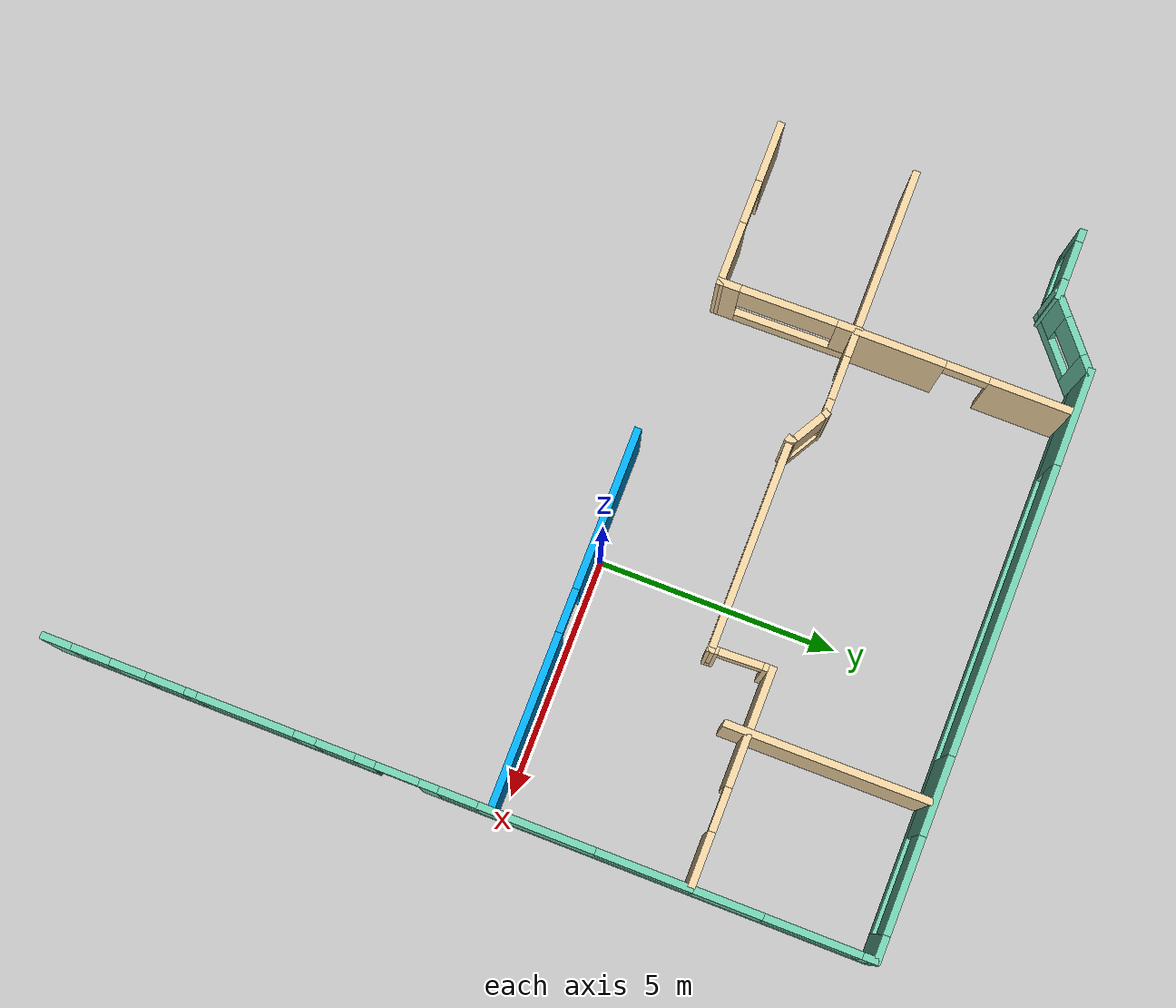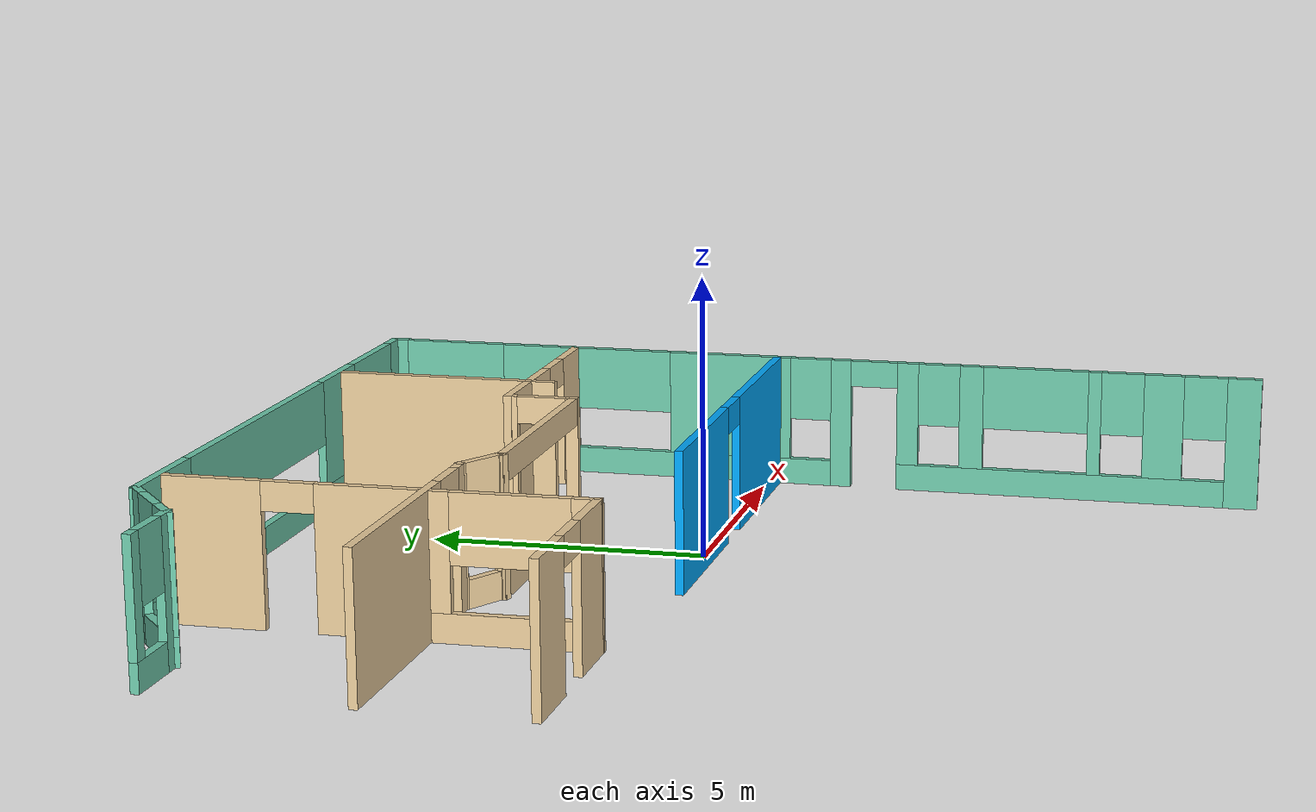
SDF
<sdf version="1.6">
 <model name="Building-1">
  <pose>-1.79482 -0.843369 0 0 -0 0</pose>
  <link name="Wall_58">
   <pose>7.27698 -0.015167 0 0 -0 1.5652</pose>
   <visual name="Wall_58_Visual_0">
    <pose>-8.25726 0 1.25 0 -0 0</pose>
    <geometry><box><size>0.633232 0.15 2.5</size></box></geometry>
    <material>
     <script><uri>file://media/materials/scripts/gazebo.material</uri><name>Gazebo/Grey</name></script>
     <ambient>0.435294 0.796078 0.67451 1</ambient>
    </material>
    <meta><layer>0</layer></meta>
   </visual>
   <collision name="Wall_58_Collision_0">
    <geometry><box><size>0.633232 0.15 2.5</size></box></geometry>
    <pose>-8.25726 0 1.25 0 -0 0</pose>
   </collision>
   <visual name="Wall_58_Visual_1">
    <pose>-0.583033 0 1.25 0 -0 0</pose>
    <geometry><box><size>0.396965 0.15 2.5</size></box></geometry>
    <material>
     <script><uri>file://media/materials/scripts/gazebo.material</uri><name>Gazebo/Grey</name></script>
     <ambient>0.435294 0.796078 0.67451 1</ambient>
    </material>
    <meta><layer>0</layer></meta>
   </visual>
   <collision name="Wall_58_Collision_1">
    <geometry><box><size>0.396965 0.15 2.5</size></box></geometry>
    <pose>-0.583033 0 1.25 0 -0 0</pose>
   </collision>
   <visual name="Wall_58_Visual_2">
    <pose>-4.81108 0 0.25 0 -0 0</pose>
    <geometry><box><size>6.25913 0.15 0.5</size></box></geometry>
    <material>
     <script><uri>file://media/materials/scripts/gazebo.material</uri><name>Gazebo/Grey</name></script>
     <ambient>0.435294 0.796078 0.67451 1</ambient>
    </material>
    <meta><layer>0</layer></meta>
   </visual>
   <collision name="Wall_58_Collision_2">
    <geometry><box><size>6.25913 0.15 0.5</size></box></geometry>
    <pose>-4.81108 0 0.25 0 -0 0</pose>
   </collision>
   <visual name="Wall_58_Visual_3">
    <pose>4.09466 0 0.25 0 -0 0</pose>
    <geometry><box><size>8.95843 0.15 0.5</size></box></geometry>
    <material>
     <script><uri>file://media/materials/scripts/gazebo.material</uri><name>Gazebo/Grey</name></script>
     <ambient>0.435294 0.796078 0.67451 1</ambient>
    </material>
    <meta><layer>0</layer></meta>
   </visual>
   <collision name="Wall_58_Collision_3">
    <geometry><box><size>8.95843 0.15 0.5</size></box></geometry>
    <pose>4.09466 0 0.25 0 -0 0</pose>
   </collision>
   <visual name="Wall_58_Visual_4">
    <pose>-6.76763 0 1.5 0 -0 0</pose>
    <geometry><box><size>0.746033 0.15 2</size></box></geometry>
    <material>
     <script><uri>file://media/materials/scripts/gazebo.material</uri><name>Gazebo/Grey</name></script>
     <ambient>0.435294 0.796078 0.67451 1</ambient>
    </material>
    <meta><layer>0</layer></meta>
   </visual>
   <collision name="Wall_58_Collision_4">
    <geometry><box><size>0.746033 0.15 2</size></box></geometry>
    <pose>-6.76763 0 1.5 0 -0 0</pose>
   </collision>
   <visual name="Wall_58_Visual_5">
    <pose>-5.47131 0 1.5 0 -0 0</pose>
    <geometry><box><size>0.246602 0.15 2</size></box></geometry>
    <material>
     <script><uri>file://media/materials/scripts/gazebo.material</uri><name>Gazebo/Grey</name></script>
     <ambient>0.435294 0.796078 0.67451 1</ambient>
    </material>
    <meta><layer>0</layer></meta>
   </visual>
   <collision name="Wall_58_Collision_5">
    <geometry><box><size>0.246602 0.15 2</size></box></geometry>
    <pose>-5.47131 0 1.5 0 -0 0</pose>
   </collision>
   <visual name="Wall_58_Visual_6">
    <pose>-3.12103 0 1.5 0 -0 0</pose>
    <geometry><box><size>0.453955 0.15 2</size></box></geometry>
    <material>
     <script><uri>file://media/materials/scripts/gazebo.material</uri><name>Gazebo/Grey</name></script>
     <ambient>0.435294 0.796078 0.67451 1</ambient>
    </material>
    <meta><layer>0</layer></meta>
   </visual>
   <collision name="Wall_58_Collision_6">
    <geometry><box><size>0.453955 0.15 2</size></box></geometry>
    <pose>-3.12103 0 1.5 0 -0 0</pose>
   </collision>
   <visual name="Wall_58_Visual_7">
    <pose>-1.88778 0 1.5 0 -0 0</pose>
    <geometry><box><size>0.412539 0.15 2</size></box></geometry>
    <material>
     <script><uri>file://media/materials/scripts/gazebo.material</uri><name>Gazebo/Grey</name></script>
     <ambient>0.435294 0.796078 0.67451 1</ambient>
    </material>
    <meta><layer>0</layer></meta>
   </visual>
   <collision name="Wall_58_Collision_7">
    <geometry><box><size>0.412539 0.15 2</size></box></geometry>
    <pose>-1.88778 0 1.5 0 -0 0</pose>
   </collision>
   <visual name="Wall_58_Visual_8">
    <pose>-1.88778 0 1.5 0 -0 0</pose>
    <geometry><box><size>0.412539 0.15 2</size></box></geometry>
    <material>
     <script><uri>file://media/materials/scripts/gazebo.material</uri><name>Gazebo/Grey</name></script>
     <ambient>0.435294 0.796078 0.67451 1</ambient>
    </material>
    <meta><layer>0</layer></meta>
   </visual>
   <collision name="Wall_58_Collision_8">
    <geometry><box><size>0.412539 0.15 2</size></box></geometry>
    <pose>-1.88778 0 1.5 0 -0 0</pose>
   </collision>
   <visual name="Wall_58_Visual_9">
    <pose>1.61766 0 1.5 0 -0 0</pose>
    <geometry><box><size>2.40442 0.15 2</size></box></geometry>
    <material>
     <script><uri>file://media/materials/scripts/gazebo.material</uri><name>Gazebo/Grey</name></script>
     <ambient>0.435294 0.796078 0.67451 1</ambient>
    </material>
    <meta><layer>0</layer></meta>
   </visual>
   <collision name="Wall_58_Collision_9">
    <geometry><box><size>2.40442 0.15 2</size></box></geometry>
    <pose>1.61766 0 1.5 0 -0 0</pose>
   </collision>
   <visual name="Wall_58_Visual_10">
    <pose>5.52613 0 1.5 0 -0 0</pose>
    <geometry><box><size>1.41252 0.15 2</size></box></geometry>
    <material>
     <script><uri>file://media/materials/scripts/gazebo.material</uri><name>Gazebo/Grey</name></script>
     <ambient>0.435294 0.796078 0.67451 1</ambient>
    </material>
    <meta><layer>0</layer></meta>
   </visual>
   <collision name="Wall_58_Collision_10">
    <geometry><box><size>1.41252 0.15 2</size></box></geometry>
    <pose>5.52613 0 1.5 0 -0 0</pose>
   </collision>
   <visual name="Wall_58_Visual_11">
    <pose>8.40314 0 1.5 0 -0 0</pose>
    <geometry><box><size>0.341482 0.15 2</size></box></geometry>
    <material>
     <script><uri>file://media/materials/scripts/gazebo.material</uri><name>Gazebo/Grey</name></script>
     <ambient>0.435294 0.796078 0.67451 1</ambient>
    </material>
    <meta><layer>0</layer></meta>
   </visual>
   <collision name="Wall_58_Collision_11">
    <geometry><box><size>0.341482 0.15 2</size></box></geometry>
    <pose>8.40314 0 1.5 0 -0 0</pose>
   </collision>
   <visual name="Wall_58_Visual_12">
    <pose>-7.54064 0 1.9 0 -0 0</pose>
    <geometry><box><size>0.8 0.15 1.2</size></box></geometry>
    <material>
     <script><uri>file://media/materials/scripts/gazebo.material</uri><name>Gazebo/Grey</name></script>
     <ambient>0.435294 0.796078 0.67451 1</ambient>
    </material>
    <meta><layer>0</layer></meta>
   </visual>
   <collision name="Wall_58_Collision_12">
    <geometry><box><size>0.8 0.15 1.2</size></box></geometry>
    <pose>-7.54064 0 1.9 0 -0 0</pose>
   </collision>
   <visual name="Wall_58_Visual_13">
    <pose>0.01545 0 1.9 0 -0 0</pose>
    <geometry><box><size>0.8 0.15 1.2</size></box></geometry>
    <material>
     <script><uri>file://media/materials/scripts/gazebo.material</uri><name>Gazebo/Grey</name></script>
     <ambient>0.435294 0.796078 0.67451 1</ambient>
    </material>
    <meta><layer>0</layer></meta>
   </visual>
   <collision name="Wall_58_Collision_13">
    <geometry><box><size>0.8 0.15 1.2</size></box></geometry>
    <pose>0.01545 0 1.9 0 -0 0</pose>
   </collision>
   <visual name="Wall_58_Visual_14">
    <pose>-5.99461 0 1.9 0 -0 0</pose>
    <geometry><box><size>0.8 0.15 1.2</size></box></geometry>
    <material>
     <script><uri>file://media/materials/scripts/gazebo.material</uri><name>Gazebo/Grey</name></script>
     <ambient>0.435294 0.796078 0.67451 1</ambient>
    </material>
    <meta><layer>0</layer></meta>
   </visual>
   <collision name="Wall_58_Collision_14">
    <geometry><box><size>0.8 0.15 1.2</size></box></geometry>
    <pose>-5.99461 0 1.9 0 -0 0</pose>
   </collision>
   <visual name="Wall_58_Visual_15">
    <pose>-4.34801 0 1.9 0 -0 0</pose>
    <geometry><box><size>2 0.15 1.2</size></box></geometry>
    <material>
     <script><uri>file://media/materials/scripts/gazebo.material</uri><name>Gazebo/Grey</name></script>
     <ambient>0.435294 0.796078 0.67451 1</ambient>
    </material>
    <meta><layer>0</layer></meta>
   </visual>
   <collision name="Wall_58_Collision_15">
    <geometry><box><size>2 0.15 1.2</size></box></geometry>
    <pose>-4.34801 0 1.9 0 -0 0</pose>
   </collision>
   <visual name="Wall_58_Visual_16">
    <pose>-2.49405 0 1.9 0 -0 0</pose>
    <geometry><box><size>0.8 0.15 1.2</size></box></geometry>
    <material>
     <script><uri>file://media/materials/scripts/gazebo.material</uri><name>Gazebo/Grey</name></script>
     <ambient>0.435294 0.796078 0.67451 1</ambient>
    </material>
    <meta><layer>0</layer></meta>
   </visual>
   <collision name="Wall_58_Collision_16">
    <geometry><box><size>0.8 0.15 1.2</size></box></geometry>
    <pose>-2.49405 0 1.9 0 -0 0</pose>
   </collision>
   <visual name="Wall_58_Visual_17">
    <pose>3.81987 0 1.9 0 -0 0</pose>
    <geometry><box><size>2 0.15 1.2</size></box></geometry>
    <material>
     <script><uri>file://media/materials/scripts/gazebo.material</uri><name>Gazebo/Grey</name></script>
     <ambient>0.435294 0.796078 0.67451 1</ambient>
    </material>
    <meta><layer>0</layer></meta>
   </visual>
   <collision name="Wall_58_Collision_17">
    <geometry><box><size>2 0.15 1.2</size></box></geometry>
    <pose>3.81987 0 1.9 0 -0 0</pose>
   </collision>
   <visual name="Wall_58_Visual_18">
    <pose>7.23239 0 1.9 0 -0 0</pose>
    <geometry><box><size>2 0.15 1.2</size></box></geometry>
    <material>
     <script><uri>file://media/materials/scripts/gazebo.material</uri><name>Gazebo/Grey</name></script>
     <ambient>0.435294 0.796078 0.67451 1</ambient>
    </material>
    <meta><layer>0</layer></meta>
   </visual>
   <collision name="Wall_58_Collision_18">
    <geometry><box><size>2 0.15 1.2</size></box></geometry>
    <pose>7.23239 0 1.9 0 -0 0</pose>
   </collision>
   <visual name="Wall_58_Visual_19">
    <pose>-1.23151 0 2.25 0 -0 0</pose>
    <geometry><box><size>0.9 0.15 0.5</size></box></geometry>
    <material>
     <script><uri>file://media/materials/scripts/gazebo.material</uri><name>Gazebo/Grey</name></script>
     <ambient>0.435294 0.796078 0.67451 1</ambient>
    </material>
    <meta><layer>0</layer></meta>
   </visual>
   <collision name="Wall_58_Collision_19">
    <geometry><box><size>0.9 0.15 0.5</size></box></geometry>
    <pose>-1.23151 0 2.25 0 -0 0</pose>
   </collision>
   <visual name="Wall_58_Visual_20">
    <pose>-1.23151 0 2.25 0 -0 0</pose>
    <geometry><box><size>0.9 0.15 0.5</size></box></geometry>
    <material>
     <script><uri>file://media/materials/scripts/gazebo.material</uri><name>Gazebo/Grey</name></script>
     <ambient>0.435294 0.796078 0.67451 1</ambient>
    </material>
    <meta><layer>0</layer></meta>
   </visual>
   <collision name="Wall_58_Collision_20">
    <geometry><box><size>0.9 0.15 0.5</size></box></geometry>
    <pose>-1.23151 0 2.25 0 -0 0</pose>
   </collision>
  </link>
  <link name="Wall_59">
   <pose>1.27452 8.50244 0 0 -0 3.14159</pose>
   <visual name="Wall_59_Visual_0">
    <pose>-5.83178 0 1.25 0 -0 0</pose>
    <geometry><box><size>0.586429 0.15 2.5</size></box></geometry>
    <material>
     <script><uri>file://media/materials/scripts/gazebo.material</uri><name>Gazebo/Grey</name></script>
     <ambient>0.435294 0.796078 0.67451 1</ambient>
    </material>
    <meta><layer>0</layer></meta>
   </visual>
   <collision name="Wall_59_Collision_0">
    <geometry><box><size>0.586429 0.15 2.5</size></box></geometry>
    <pose>-5.83178 0 1.25 0 -0 0</pose>
   </collision>
   <visual name="Wall_59_Visual_1">
    <pose>0.293215 0 0.25 0 -0 0</pose>
    <geometry><box><size>11.6636 0.15 0.5</size></box></geometry>
    <material>
     <script><uri>file://media/materials/scripts/gazebo.material</uri><name>Gazebo/Grey</name></script>
     <ambient>0.435294 0.796078 0.67451 1</ambient>
    </material>
    <meta><layer>0</layer></meta>
   </visual>
   <collision name="Wall_59_Collision_1">
    <geometry><box><size>11.6636 0.15 0.5</size></box></geometry>
    <pose>0.293215 0 0.25 0 -0 0</pose>
   </collision>
   <visual name="Wall_59_Visual_2">
    <pose>-2.72513 0 1.5 0 -0 0</pose>
    <geometry><box><size>1.62688 0.15 2</size></box></geometry>
    <material>
     <script><uri>file://media/materials/scripts/gazebo.material</uri><name>Gazebo/Grey</name></script>
     <ambient>0.435294 0.796078 0.67451 1</ambient>
    </material>
    <meta><layer>0</layer></meta>
   </visual>
   <collision name="Wall_59_Collision_2">
    <geometry><box><size>1.62688 0.15 2</size></box></geometry>
    <pose>-2.72513 0 1.5 0 -0 0</pose>
   </collision>
   <visual name="Wall_59_Visual_3">
    <pose>5.10665 0 1.5 0 -0 0</pose>
    <geometry><box><size>2.03669 0.15 2</size></box></geometry>
    <material>
     <script><uri>file://media/materials/scripts/gazebo.material</uri><name>Gazebo/Grey</name></script>
     <ambient>0.435294 0.796078 0.67451 1</ambient>
    </material>
    <meta><layer>0</layer></meta>
   </visual>
   <collision name="Wall_59_Collision_3">
    <geometry><box><size>2.03669 0.15 2</size></box></geometry>
    <pose>5.10665 0 1.5 0 -0 0</pose>
   </collision>
   <visual name="Wall_59_Visual_4">
    <pose>-4.53857 0 1.9 0 -0 0</pose>
    <geometry><box><size>2 0.15 1.2</size></box></geometry>
    <material>
     <script><uri>file://media/materials/scripts/gazebo.material</uri><name>Gazebo/Grey</name></script>
     <ambient>0.435294 0.796078 0.67451 1</ambient>
    </material>
    <meta><layer>0</layer></meta>
   </visual>
   <collision name="Wall_59_Collision_4">
    <geometry><box><size>2 0.15 1.2</size></box></geometry>
    <pose>-4.53857 0 1.9 0 -0 0</pose>
   </collision>
   <visual name="Wall_59_Visual_5">
    <pose>1.08831 0 1.9 0 -0 0</pose>
    <geometry><box><size>6 0.15 1.2</size></box></geometry>
    <material>
     <script><uri>file://media/materials/scripts/gazebo.material</uri><name>Gazebo/Grey</name></script>
     <ambient>0.435294 0.796078 0.67451 1</ambient>
    </material>
    <meta><layer>0</layer></meta>
   </visual>
   <collision name="Wall_59_Collision_5">
    <geometry><box><size>6 0.15 1.2</size></box></geometry>
    <pose>1.08831 0 1.9 0 -0 0</pose>
   </collision>
  </link>
  <link name="Wall_60">
   <pose>-5.41275 7.93742 0 0 0 -2.43304</pose>
   <visual name="Wall_60_Visual_0">
    <pose>-0.703208 0 1.25 0 -0 0</pose>
    <geometry><box><size>0.422171 0.15 2.5</size></box></geometry>
    <material>
     <script><uri>file://media/materials/scripts/gazebo.material</uri><name>Gazebo/Grey</name></script>
     <ambient>0.435294 0.796078 0.67451 1</ambient>
    </material>
    <meta><layer>0</layer></meta>
   </visual>
   <collision name="Wall_60_Collision_0">
    <geometry><box><size>0.422171 0.15 2.5</size></box></geometry>
    <pose>-0.703208 0 1.25 0 -0 0</pose>
   </collision>
   <visual name="Wall_60_Visual_1">
    <pose>0.211086 0 0.25 0 -0 0</pose>
    <geometry><box><size>1.40642 0.15 0.5</size></box></geometry>
    <material>
     <script><uri>file://media/materials/scripts/gazebo.material</uri><name>Gazebo/Grey</name></script>
     <ambient>0.435294 0.796078 0.67451 1</ambient>
    </material>
    <meta><layer>0</layer></meta>
   </visual>
   <collision name="Wall_60_Collision_1">
    <geometry><box><size>1.40642 0.15 0.5</size></box></geometry>
    <pose>0.211086 0 0.25 0 -0 0</pose>
   </collision>
   <visual name="Wall_60_Visual_2">
    <pose>0.611086 0 1.5 0 -0 0</pose>
    <geometry><box><size>0.606416 0.15 2</size></box></geometry>
    <material>
     <script><uri>file://media/materials/scripts/gazebo.material</uri><name>Gazebo/Grey</name></script>
     <ambient>0.435294 0.796078 0.67451 1</ambient>
    </material>
    <meta><layer>0</layer></meta>
   </visual>
   <collision name="Wall_60_Collision_2">
    <geometry><box><size>0.606416 0.15 2</size></box></geometry>
    <pose>0.611086 0 1.5 0 -0 0</pose>
   </collision>
   <visual name="Wall_60_Visual_3">
    <pose>-0.092122 0 1.9 0 -0 0</pose>
    <geometry><box><size>0.8 0.15 1.2</size></box></geometry>
    <material>
     <script><uri>file://media/materials/scripts/gazebo.material</uri><name>Gazebo/Grey</name></script>
     <ambient>0.435294 0.796078 0.67451 1</ambient>
    </material>
    <meta><layer>0</layer></meta>
   </visual>
   <collision name="Wall_60_Collision_3">
    <geometry><box><size>0.8 0.15 1.2</size></box></geometry>
    <pose>-0.092122 0 1.9 0 -0 0</pose>
   </collision>
  </link>
  <link name="Wall_65">
   <pose>-6.64959 7.42898 0 0 -0 3.14159</pose>
   <visual name="Wall_65_Visual_0">
    <pose>-0.53233 0 1.25 0 -0 0</pose>
    <geometry><box><size>0.43534 0.15 2.5</size></box></geometry>
    <material>
     <script><uri>file://media/materials/scripts/gazebo.material</uri><name>Gazebo/Grey</name></script>
     <ambient>0.435294 0.796078 0.67451 1</ambient>
    </material>
    <meta><layer>0</layer></meta>
   </visual>
   <collision name="Wall_65_Collision_0">
    <geometry><box><size>0.43534 0.15 2.5</size></box></geometry>
    <pose>-0.53233 0 1.25 0 -0 0</pose>
   </collision>
   <visual name="Wall_65_Visual_1">
    <pose>0.21767 0 0.25 0 -0 0</pose>
    <geometry><box><size>1.06466 0.15 0.5</size></box></geometry>
    <material>
     <script><uri>file://media/materials/scripts/gazebo.material</uri><name>Gazebo/Grey</name></script>
     <ambient>0.435294 0.796078 0.67451 1</ambient>
    </material>
    <meta><layer>0</layer></meta>
   </visual>
   <collision name="Wall_65_Collision_1">
    <geometry><box><size>1.06466 0.15 0.5</size></box></geometry>
    <pose>0.21767 0 0.25 0 -0 0</pose>
   </collision>
   <visual name="Wall_65_Visual_2">
    <pose>0.61767 0 1.5 0 -0 0</pose>
    <geometry><box><size>0.26466 0.15 2</size></box></geometry>
    <material>
     <script><uri>file://media/materials/scripts/gazebo.material</uri><name>Gazebo/Grey</name></script>
     <ambient>0.435294 0.796078 0.67451 1</ambient>
    </material>
    <meta><layer>0</layer></meta>
   </visual>
   <collision name="Wall_65_Collision_2">
    <geometry><box><size>0.26466 0.15 2</size></box></geometry>
    <pose>0.61767 0 1.5 0 -0 0</pose>
   </collision>
   <visual name="Wall_65_Visual_3">
    <pose>0.08534 0 1.9 0 -0 0</pose>
    <geometry><box><size>0.8 0.15 1.2</size></box></geometry>
    <material>
     <script><uri>file://media/materials/scripts/gazebo.material</uri><name>Gazebo/Grey</name></script>
     <ambient>0.435294 0.796078 0.67451 1</ambient>
    </material>
    <meta><layer>0</layer></meta>
   </visual>
   <collision name="Wall_65_Collision_3">
    <geometry><box><size>0.8 0.15 1.2</size></box></geometry>
    <pose>0.08534 0 1.9 0 -0 0</pose>
   </collision>
  </link>
  <link name="Wall_75">
   <pose>-4.7159 3.98332 0 0 -0 0</pose>
   <visual name="Wall_75_Visual_0">
    <pose>-0.643066 0 1.25 0 -0 0</pose>
    <geometry><box><size>3.96387 0.15 2.5</size></box></geometry>
    <material>
     <script><uri>file://media/materials/scripts/gazebo.material</uri><name>Gazebo/Grey</name></script>
     <ambient>0.921569 0.807843 0.615686 1</ambient>
    </material>
    <meta><layer>0</layer></meta>
   </visual>
   <collision name="Wall_75_Collision_0">
    <geometry><box><size>3.96387 0.15 2.5</size></box></geometry>
    <pose>-0.643066 0 1.25 0 -0 0</pose>
   </collision>
   <visual name="Wall_75_Visual_1">
    <pose>2.43193 0 1.25 0 -0 0</pose>
    <geometry><box><size>0.386132 0.15 2.5</size></box></geometry>
    <material>
     <script><uri>file://media/materials/scripts/gazebo.material</uri><name>Gazebo/Grey</name></script>
     <ambient>0.921569 0.807843 0.615686 1</ambient>
    </material>
    <meta><layer>0</layer></meta>
   </visual>
   <collision name="Wall_75_Collision_1">
    <geometry><box><size>0.386132 0.15 2.5</size></box></geometry>
    <pose>2.43193 0 1.25 0 -0 0</pose>
   </collision>
   <visual name="Wall_75_Visual_2">
    <pose>1.78887 0 2.25 0 -0 0</pose>
    <geometry><box><size>0.9 0.15 0.5</size></box></geometry>
    <material>
     <script><uri>file://media/materials/scripts/gazebo.material</uri><name>Gazebo/Grey</name></script>
     <ambient>0.921569 0.807843 0.615686 1</ambient>
    </material>
    <meta><layer>0</layer></meta>
   </visual>
   <collision name="Wall_75_Collision_2">
    <geometry><box><size>0.9 0.15 0.5</size></box></geometry>
    <pose>1.78887 0 2.25 0 -0 0</pose>
   </collision>
  </link>
  <link name="Wall_76">
   <pose>-1.79784 3.77082 0 0 0 -0.523599</pose>
   <visual name="Wall_76_Visual_0">
    <pose>-0.433172 0 1.25 0 -0 0</pose>
    <geometry><box><size>0.133657 0.15 2.5</size></box></geometry>
    <material>
     <script><uri>file://media/materials/scripts/gazebo.material</uri><name>Gazebo/Grey</name></script>
     <ambient>0.921569 0.807843 0.615686 1</ambient>
    </material>
    <meta><layer>0</layer></meta>
   </visual>
   <collision name="Wall_76_Collision_0">
    <geometry><box><size>0.133657 0.15 2.5</size></box></geometry>
    <pose>-0.433172 0 1.25 0 -0 0</pose>
   </collision>
   <visual name="Wall_76_Visual_1">
    <pose>0.066828 0 0.25 0 -0 0</pose>
    <geometry><box><size>0.866343 0.15 0.5</size></box></geometry>
    <material>
     <script><uri>file://media/materials/scripts/gazebo.material</uri><name>Gazebo/Grey</name></script>
     <ambient>0.921569 0.807843 0.615686 1</ambient>
    </material>
    <meta><layer>0</layer></meta>
   </visual>
   <collision name="Wall_76_Collision_1">
    <geometry><box><size>0.866343 0.15 0.5</size></box></geometry>
    <pose>0.066828 0 0.25 0 -0 0</pose>
   </collision>
   <visual name="Wall_76_Visual_2">
    <pose>0.466828 0 1.5 0 -0 0</pose>
    <geometry><box><size>0.066343 0.15 2</size></box></geometry>
    <material>
     <script><uri>file://media/materials/scripts/gazebo.material</uri><name>Gazebo/Grey</name></script>
     <ambient>0.921569 0.807843 0.615686 1</ambient>
    </material>
    <meta><layer>0</layer></meta>
   </visual>
   <collision name="Wall_76_Collision_2">
    <geometry><box><size>0.066343 0.15 2</size></box></geometry>
    <pose>0.466828 0 1.5 0 -0 0</pose>
   </collision>
   <visual name="Wall_76_Visual_3">
    <pose>0.033657 0 1.9 0 -0 0</pose>
    <geometry><box><size>0.8 0.15 1.2</size></box></geometry>
    <material>
     <script><uri>file://media/materials/scripts/gazebo.material</uri><name>Gazebo/Grey</name></script>
     <ambient>0.921569 0.807843 0.615686 1</ambient>
    </material>
    <meta><layer>0</layer></meta>
   </visual>
   <collision name="Wall_76_Collision_3">
    <geometry><box><size>0.8 0.15 1.2</size></box></geometry>
    <pose>0.033657 0 1.9 0 -0 0</pose>
   </collision>
  </link>
  <link name="Wall_77">
   <collision name="Wall_77_Collision">
    <geometry><box><size>0.210855 0.15 2.5</size></box></geometry>
    <pose>0 0 1.25 0 -0 0</pose>
   </collision>
   <visual name="Wall_77_Visual">
    <pose>0 0 1.25 0 -0 0</pose>
    <geometry><box><size>0.210855 0.15 2.5</size></box></geometry>
    <material>
     <script><uri>file://media/materials/scripts/gazebo.material</uri><name>Gazebo/Grey</name></script>
     <ambient>0.921569 0.807843 0.615686 1</ambient>
    </material>
    <meta><layer>0</layer></meta>
   </visual>
   <pose>-1.43921 3.52939 0 0 0 -1.88591</pose>
  </link>
  <link name="Wall_78">
   <pose>0.726359 3.51932 0 0 -0 0</pose>
   <visual name="Wall_78_Visual_0">
    <pose>-2.1723 0 1.25 0 -0 0</pose>
    <geometry><box><size>0.155395 0.15 2.5</size></box></geometry>
    <material>
     <script><uri>file://media/materials/scripts/gazebo.material</uri><name>Gazebo/Grey</name></script>
     <ambient>0.921569 0.807843 0.615686 1</ambient>
    </material>
    <meta><layer>0</layer></meta>
   </visual>
   <collision name="Wall_78_Collision_0">
    <geometry><box><size>0.155395 0.15 2.5</size></box></geometry>
    <pose>-2.1723 0 1.25 0 -0 0</pose>
   </collision>
   <visual name="Wall_78_Visual_1">
    <pose>0.077698 0 0.25 0 -0 0</pose>
    <geometry><box><size>4.3446 0.15 0.5</size></box></geometry>
    <material>
     <script><uri>file://media/materials/scripts/gazebo.material</uri><name>Gazebo/Grey</name></script>
     <ambient>0.921569 0.807843 0.615686 1</ambient>
    </material>
    <meta><layer>0</layer></meta>
   </visual>
   <collision name="Wall_78_Collision_1">
    <geometry><box><size>4.3446 0.15 0.5</size></box></geometry>
    <pose>0.077698 0 0.25 0 -0 0</pose>
   </collision>
   <visual name="Wall_78_Visual_2">
    <pose>2.19798 0 1.5 0 -0 0</pose>
    <geometry><box><size>0.104045 0.15 2</size></box></geometry>
    <material>
     <script><uri>file://media/materials/scripts/gazebo.material</uri><name>Gazebo/Grey</name></script>
     <ambient>0.921569 0.807843 0.615686 1</ambient>
    </material>
    <meta><layer>0</layer></meta>
   </visual>
   <collision name="Wall_78_Collision_2">
    <geometry><box><size>0.104045 0.15 2</size></box></geometry>
    <pose>2.19798 0 1.5 0 -0 0</pose>
   </collision>
   <visual name="Wall_78_Visual_3">
    <pose>0.025675 0 2.25 0 -0 0</pose>
    <geometry><box><size>4.24056 0.15 0.5</size></box></geometry>
    <material>
     <script><uri>file://media/materials/scripts/gazebo.material</uri><name>Gazebo/Grey</name></script>
     <ambient>0.921569 0.807843 0.615686 1</ambient>
    </material>
    <meta><layer>0</layer></meta>
   </visual>
   <collision name="Wall_78_Collision_3">
    <geometry><box><size>4.24056 0.15 0.5</size></box></geometry>
    <pose>0.025675 0 2.25 0 -0 0</pose>
   </collision>
  </link>
  <link name="Wall_79">
   <pose>2.8825 4.04585 0 0 -0 1.60536</pose>
   <visual name="Wall_79_Visual_0">
    <pose>-0.503306 0 1.25 0 -0 0</pose>
    <geometry><box><size>0.234806 0.15 2.5</size></box></geometry>
    <material>
     <script><uri>file://media/materials/scripts/gazebo.material</uri><name>Gazebo/Grey</name></script>
     <ambient>0.921569 0.807843 0.615686 1</ambient>
    </material>
    <meta><layer>0</layer></meta>
   </visual>
   <collision name="Wall_79_Collision_0">
    <geometry><box><size>0.234806 0.15 2.5</size></box></geometry>
    <pose>-0.503306 0 1.25 0 -0 0</pose>
   </collision>
   <visual name="Wall_79_Visual_1">
    <pose>0.567403 0 1.25 0 -0 0</pose>
    <geometry><box><size>0.106613 0.15 2.5</size></box></geometry>
    <material>
     <script><uri>file://media/materials/scripts/gazebo.material</uri><name>Gazebo/Grey</name></script>
     <ambient>0.921569 0.807843 0.615686 1</ambient>
    </material>
    <meta><layer>0</layer></meta>
   </visual>
   <collision name="Wall_79_Collision_1">
    <geometry><box><size>0.106613 0.15 2.5</size></box></geometry>
    <pose>0.567403 0 1.25 0 -0 0</pose>
   </collision>
   <visual name="Wall_79_Visual_2">
    <pose>0.064096 0 2.25 0 -0 0</pose>
    <geometry><box><size>0.9 0.15 0.5</size></box></geometry>
    <material>
     <script><uri>file://media/materials/scripts/gazebo.material</uri><name>Gazebo/Grey</name></script>
     <ambient>0.921569 0.807843 0.615686 1</ambient>
    </material>
    <meta><layer>0</layer></meta>
   </visual>
   <collision name="Wall_79_Collision_2">
    <geometry><box><size>0.9 0.15 0.5</size></box></geometry>
    <pose>0.064096 0 2.25 0 -0 0</pose>
   </collision>
  </link>
  <link name="Wall_80">
   <pose>5.03864 4.74211 0 0 -0 0</pose>
   <visual name="Wall_80_Visual_0">
    <pose>-1.01395 0 1.25 0 -0 0</pose>
    <geometry><box><size>2.47211 0.15 2.5</size></box></geometry>
    <material>
     <script><uri>file://media/materials/scripts/gazebo.material</uri><name>Gazebo/Grey</name></script>
     <ambient>0.921569 0.807843 0.615686 1</ambient>
    </material>
    <meta><layer>0</layer></meta>
   </visual>
   <collision name="Wall_80_Collision_0">
    <geometry><box><size>2.47211 0.15 2.5</size></box></geometry>
    <pose>-1.01395 0 1.25 0 -0 0</pose>
   </collision>
   <visual name="Wall_80_Visual_1">
    <pose>1.68606 0 1.25 0 -0 0</pose>
    <geometry><box><size>1.12789 0.15 2.5</size></box></geometry>
    <material>
     <script><uri>file://media/materials/scripts/gazebo.material</uri><name>Gazebo/Grey</name></script>
     <ambient>0.921569 0.807843 0.615686 1</ambient>
    </material>
    <meta><layer>0</layer></meta>
   </visual>
   <collision name="Wall_80_Collision_1">
    <geometry><box><size>1.12789 0.15 2.5</size></box></geometry>
    <pose>1.68606 0 1.25 0 -0 0</pose>
   </collision>
   <visual name="Wall_80_Visual_2">
    <pose>0.672111 0 2.25 0 -0 0</pose>
    <geometry><box><size>0.9 0.15 0.5</size></box></geometry>
    <material>
     <script><uri>file://media/materials/scripts/gazebo.material</uri><name>Gazebo/Grey</name></script>
     <ambient>0.921569 0.807843 0.615686 1</ambient>
    </material>
    <meta><layer>0</layer></meta>
   </visual>
   <collision name="Wall_80_Collision_2">
    <geometry><box><size>0.9 0.15 0.5</size></box></geometry>
    <pose>0.672111 0 2.25 0 -0 0</pose>
   </collision>
  </link>
  <link name="Wall_82">
   <pose>-5.57207 1.16029 0 0 -0 0</pose>
   <visual name="Wall_82_Visual_0">
    <pose>-1.11598 0 1.25 0 -0 0</pose>
    <geometry><box><size>1.26803 0.15 2.5</size></box></geometry>
    <material>
     <script><uri>file://media/materials/scripts/gazebo.material</uri><name>Gazebo/Grey</name></script>
     <ambient>0.921569 0.807843 0.615686 1</ambient>
    </material>
    <meta><layer>0</layer></meta>
   </visual>
   <collision name="Wall_82_Collision_0">
    <geometry><box><size>1.26803 0.15 2.5</size></box></geometry>
    <pose>-1.11598 0 1.25 0 -0 0</pose>
   </collision>
   <visual name="Wall_82_Visual_1">
    <pose>1.08402 0 1.25 0 -0 0</pose>
    <geometry><box><size>1.33197 0.15 2.5</size></box></geometry>
    <material>
     <script><uri>file://media/materials/scripts/gazebo.material</uri><name>Gazebo/Grey</name></script>
     <ambient>0.921569 0.807843 0.615686 1</ambient>
    </material>
    <meta><layer>0</layer></meta>
   </visual>
   <collision name="Wall_82_Collision_1">
    <geometry><box><size>1.33197 0.15 2.5</size></box></geometry>
    <pose>1.08402 0 1.25 0 -0 0</pose>
   </collision>
   <visual name="Wall_82_Visual_2">
    <pose>-0.031967 0 2.25 0 -0 0</pose>
    <geometry><box><size>0.9 0.15 0.5</size></box></geometry>
    <material>
     <script><uri>file://media/materials/scripts/gazebo.material</uri><name>Gazebo/Grey</name></script>
     <ambient>0.921569 0.807843 0.615686 1</ambient>
    </material>
    <meta><layer>0</layer></meta>
   </visual>
   <collision name="Wall_82_Collision_2">
    <geometry><box><size>0.9 0.15 0.5</size></box></geometry>
    <pose>-0.031967 0 2.25 0 -0 0</pose>
   </collision>
  </link>
  <link name="Wall_83">
   <pose>-3.91593 2.58529 0 0 -0 1.58403</pose>
   <visual name="Wall_83_Visual_0">
    <pose>-1.25623 0 1.25 0 -0 0</pose>
    <geometry><box><size>0.487538 0.15 2.5</size></box></geometry>
    <material>
     <script><uri>file://media/materials/scripts/gazebo.material</uri><name>Gazebo/Grey</name></script>
     <ambient>0.921569 0.807843 0.615686 1</ambient>
    </material>
    <meta><layer>0</layer></meta>
   </visual>
   <collision name="Wall_83_Collision_0">
    <geometry><box><size>0.487538 0.15 2.5</size></box></geometry>
    <pose>-1.25623 0 1.25 0 -0 0</pose>
   </collision>
   <visual name="Wall_83_Visual_1">
    <pose>0.243769 0 0.25 0 -0 0</pose>
    <geometry><box><size>2.51246 0.15 0.5</size></box></geometry>
    <material>
     <script><uri>file://media/materials/scripts/gazebo.material</uri><name>Gazebo/Grey</name></script>
     <ambient>0.921569 0.807843 0.615686 1</ambient>
    </material>
    <meta><layer>0</layer></meta>
   </visual>
   <collision name="Wall_83_Collision_1">
    <geometry><box><size>2.51246 0.15 0.5</size></box></geometry>
    <pose>0.243769 0 0.25 0 -0 0</pose>
   </collision>
   <visual name="Wall_83_Visual_2">
    <pose>1.24377 0 1.5 0 -0 0</pose>
    <geometry><box><size>0.512462 0.15 2</size></box></geometry>
    <material>
     <script><uri>file://media/materials/scripts/gazebo.material</uri><name>Gazebo/Grey</name></script>
     <ambient>0.921569 0.807843 0.615686 1</ambient>
    </material>
    <meta><layer>0</layer></meta>
   </visual>
   <collision name="Wall_83_Collision_2">
    <geometry><box><size>0.512462 0.15 2</size></box></geometry>
    <pose>1.24377 0 1.5 0 -0 0</pose>
   </collision>
   <visual name="Wall_83_Visual_3">
    <pose>-0.012462 0 1.9 0 -0 0</pose>
    <geometry><box><size>2 0.15 1.2</size></box></geometry>
    <material>
     <script><uri>file://media/materials/scripts/gazebo.material</uri><name>Gazebo/Grey</name></script>
     <ambient>0.921569 0.807843 0.615686 1</ambient>
    </material>
    <meta><layer>0</layer></meta>
   </visual>
   <collision name="Wall_83_Collision_3">
    <geometry><box><size>2 0.15 1.2</size></box></geometry>
    <pose>-0.012462 0 1.9 0 -0 0</pose>
   </collision>
  </link>
  <link name="Wall_85">
   <collision name="Wall_85_Collision">
    <geometry><box><size>4.25 0.15 2.5</size></box></geometry>
    <pose>0 0 1.25 0 -0 0</pose>
   </collision>
   <visual name="Wall_85_Visual">
    <pose>0 0 1.25 0 -0 0</pose>
    <geometry><box><size>4.25 0.15 2.5</size></box></geometry>
    <material>
     <script><uri>file://media/materials/scripts/gazebo.material</uri><name>Gazebo/Grey</name></script>
     <ambient>0.921569 0.807843 0.615686 1</ambient>
    </material>
    <meta><layer>0</layer></meta>
   </visual>
   <pose>4.14181 6.34937 0 0 -0 1.5708</pose>
  </link>
  <link name="Wall_87">
   <pose>-3.91593 6.18529 0 0 -0 1.5708</pose>
   <visual name="Wall_87_Visual_0">
    <pose>-1.30363 0 1.25 0 -0 0</pose>
    <geometry><box><size>1.89274 0.15 2.5</size></box></geometry>
    <material>
     <script><uri>file://media/materials/scripts/gazebo.material</uri><name>Gazebo/Grey</name></script>
     <ambient>0.921569 0.807843 0.615686 1</ambient>
    </material>
    <meta><layer>0</layer></meta>
   </visual>
   <collision name="Wall_87_Collision_0">
    <geometry><box><size>1.89274 0.15 2.5</size></box></geometry>
    <pose>-1.30363 0 1.25 0 -0 0</pose>
   </collision>
   <visual name="Wall_87_Visual_1">
    <pose>1.39637 0 1.25 0 -0 0</pose>
    <geometry><box><size>1.70726 0.15 2.5</size></box></geometry>
    <material>
     <script><uri>file://media/materials/scripts/gazebo.material</uri><name>Gazebo/Grey</name></script>
     <ambient>0.921569 0.807843 0.615686 1</ambient>
    </material>
    <meta><layer>0</layer></meta>
   </visual>
   <collision name="Wall_87_Collision_1">
    <geometry><box><size>1.70726 0.15 2.5</size></box></geometry>
    <pose>1.39637 0 1.25 0 -0 0</pose>
   </collision>
   <visual name="Wall_87_Visual_2">
    <pose>0.092738 0 2.25 0 -0 0</pose>
    <geometry><box><size>0.9 0.15 0.5</size></box></geometry>
    <material>
     <script><uri>file://media/materials/scripts/gazebo.material</uri><name>Gazebo/Grey</name></script>
     <ambient>0.921569 0.807843 0.615686 1</ambient>
    </material>
    <meta><layer>0</layer></meta>
   </visual>
   <collision name="Wall_87_Collision_2">
    <geometry><box><size>0.9 0.15 0.5</size></box></geometry>
    <pose>0.092738 0 2.25 0 -0 0</pose>
   </collision>
  </link>
  <link name="Wall_89">
   <pose>3.31292 0.676366 0 0 -0 3.13877</pose>
   <visual name="Wall_89_Visual_0">
    <pose>-2.12983 0 1.25 0 -0 0</pose>
    <geometry><box><size>3.58853 0.15 2.5</size></box></geometry>
    <material>
     <script><uri>file://media/materials/scripts/gazebo.material</uri><name>Gazebo/Grey</name></script>
     <ambient>0 0.666667 1 1</ambient>
    </material>
    <meta><layer>0</layer></meta>
   </visual>
   <collision name="Wall_89_Collision_0">
    <geometry><box><size>3.58853 0.15 2.5</size></box></geometry>
    <pose>-2.12983 0 1.25 0 -0 0</pose>
   </collision>
   <visual name="Wall_89_Visual_1">
    <pose>2.24427 0 1.25 0 -0 0</pose>
    <geometry><box><size>3.35967 0.15 2.5</size></box></geometry>
    <material>
     <script><uri>file://media/materials/scripts/gazebo.material</uri><name>Gazebo/Grey</name></script>
     <ambient>0 0.666667 1 1</ambient>
    </material>
    <meta><layer>0</layer></meta>
   </visual>
   <collision name="Wall_89_Collision_1">
    <geometry><box><size>3.35967 0.15 2.5</size></box></geometry>
    <pose>2.24427 0 1.25 0 -0 0</pose>
   </collision>
   <visual name="Wall_89_Visual_2">
    <pose>0.114431 0 2.25 0 -0 0</pose>
    <geometry><box><size>0.9 0.15 0.5</size></box></geometry>
    <material>
     <script><uri>file://media/materials/scripts/gazebo.material</uri><name>Gazebo/Grey</name></script>
     <ambient>0 0.666667 1 1</ambient>
    </material>
    <meta><layer>0</layer></meta>
   </visual>
   <collision name="Wall_89_Collision_2">
    <geometry><box><size>0.9 0.15 0.5</size></box></geometry>
    <pose>0.114431 0 2.25 0 -0 0</pose>
   </collision>
  </link>
  <static>1</static>
 </model>
</sdf>
